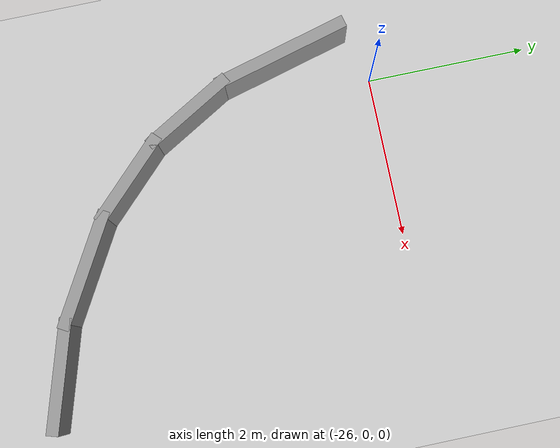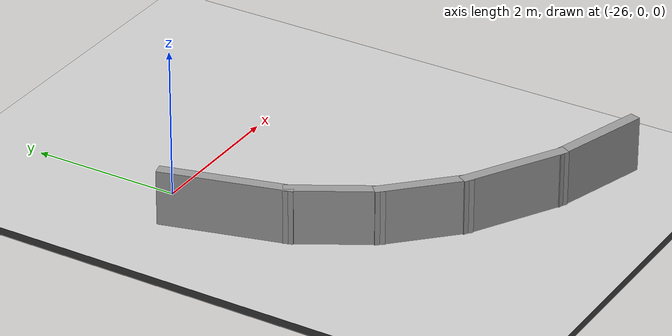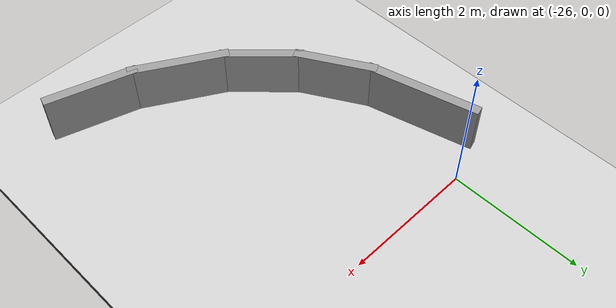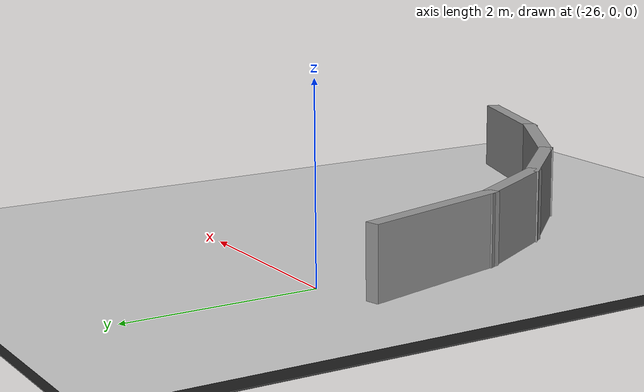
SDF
<sdf version="1.6">
 <world name="default">
  <model name="course">
   <static>1</static>
   <link name="course_link">
    <collision name="course_collision">
     <geometry><plane><normal>0 0 1</normal><size>152.72 129.83</size></plane></geometry>
     <surface><friction><ode><mu>100</mu><mu2>50</mu2></ode></friction></surface>
    </collision>
    <visual name="course_visual">
     <cast_shadows>0</cast_shadows>
     <geometry><plane><normal>0 0 1</normal><size>152.72 129.83</size></plane></geometry>
     <material>
      <script>
       <uri>model://turtlebot3_autorace/course/materials/scripts</uri>
       <uri>model://turtlebot3_autorace/course/materials/textures</uri>
       <name>course</name>
      </script>
     </material>
    </visual>
   </link>
  </model>
  <model name="ground2">
   <pose>0 0 -0.11 0 -0 0</pose>
   <static>1</static>
   <link name="ground">
    <collision name="ground_coll"><geometry><box><size>165 140 0.01</size></box></geometry></collision>
    <visual name="ground_vis">
     <geometry><box><size>165 140 0.01</size></box></geometry>
     <material>
      <script><uri>file://media/materials/scripts/gazebo.material</uri><name>Gazebo/FlatBlack</name></script>
     </material>
    </visual>
   </link>
  </model>
  <model name="Ic_Duvarlar">
   <pose>8.43 0.084176 0 0 -0 0</pose>
   <link name="Wall_116">
    <collision name="Wall_116_Collision">
     <geometry><box><size>1.75 0.15 0.75</size></box></geometry>
     <pose>0 0 0.375 0 -0 0</pose>
    </collision>
    <visual name="Wall_116_Visual">
     <pose>0 0 0.375 0 -0 0</pose>
     <geometry><box><size>1.75 0.15 0.75</size></box></geometry>
     <material>
      <script><uri>file://media/materials/scripts/gazebo.material</uri><name>Gazebo/Grey</name></script>
      <ambient>1 1 1 1</ambient>
     </material>
    </visual>
    <pose>-34.8432 -1.14562 0 0 0 -1.30915</pose>
   </link>
   <link name="Wall_117">
    <collision name="Wall_117_Collision">
     <geometry><box><size>1.25 0.15 0.75</size></box></geometry>
     <pose>0 0 0.375 0 -0 0</pose>
    </collision>
    <visual name="Wall_117_Visual">
     <pose>0 0 0.375 0 -0 0</pose>
     <geometry><box><size>1.25 0.15 0.75</size></box></geometry>
     <material>
      <script><uri>file://media/materials/scripts/gazebo.material</uri><name>Gazebo/Grey</name></script>
      <ambient>1 1 1 1</ambient>
     </material>
    </visual>
    <pose>-34.3612 -2.39461 0 0 0 -1.04691</pose>
   </link>
   <link name="Wall_118">
    <collision name="Wall_118_Collision">
     <geometry><box><size>1.25 0.15 0.75</size></box></geometry>
     <pose>0 0 0.375 0 -0 0</pose>
    </collision>
    <visual name="Wall_118_Visual">
     <pose>0 0 0.375 0 -0 0</pose>
     <geometry><box><size>1.25 0.15 0.75</size></box></geometry>
     <material>
      <script><uri>file://media/materials/scripts/gazebo.material</uri><name>Gazebo/Grey</name></script>
      <ambient>1 1 1 1</ambient>
     </material>
    </visual>
    <pose>-33.6972 -3.25962 0 0 0 -0.785398</pose>
   </link>
   <link name="Wall_120">
    <collision name="Wall_120_Collision">
     <geometry><box><size>1.39796 0.15 0.75</size></box></geometry>
     <pose>0 0 0.375 0 -0 0</pose>
    </collision>
    <visual name="Wall_120_Visual">
     <pose>0 0 0.375 0 -0 0</pose>
     <geometry><box><size>1.39796 0.15 0.75</size></box></geometry>
     <material>
      <script><uri>file://media/materials/scripts/gazebo.material</uri><name>Gazebo/Grey</name></script>
      <ambient>1 1 1 1</ambient>
     </material>
    </visual>
    <pose>-31.5427 -4.50662 0 0 0 -0.297674</pose>
   </link>
   <link name="Wall_287">
    <collision name="Wall_287_Collision">
     <geometry><box><size>1.49963 0.15 0.75</size></box></geometry>
     <pose>0 0 0.375 0 -0 0</pose>
    </collision>
    <visual name="Wall_287_Visual">
     <pose>0 0 0.375 0 -0 0</pose>
     <geometry><box><size>1.49963 0.15 0.75</size></box></geometry>
     <material>
      <script><uri>file://media/materials/scripts/gazebo.material</uri><name>Gazebo/Grey</name></script>
      <ambient>1 1 1 1</ambient>
     </material>
    </visual>
    <pose>-32.7237 -3.98611 0 0 0 -0.523649</pose>
   </link>
   <static>1</static>
  </model>
 </world>
</sdf>
